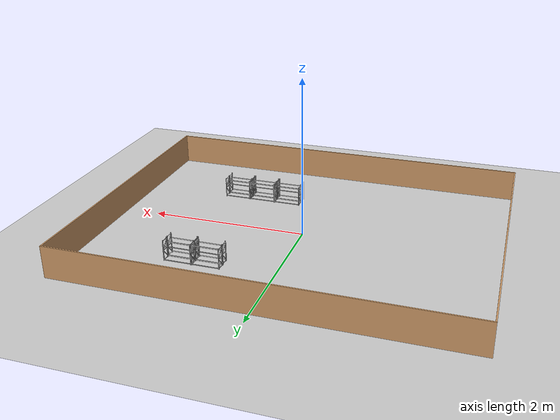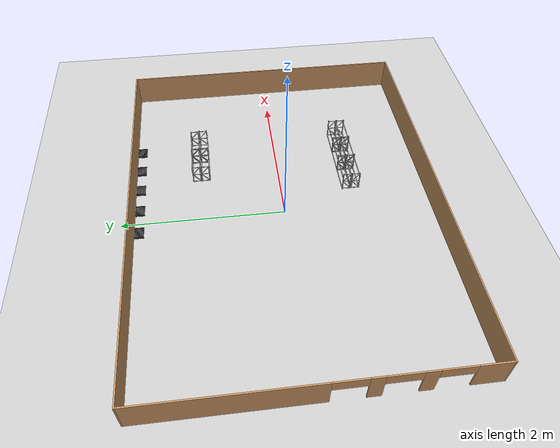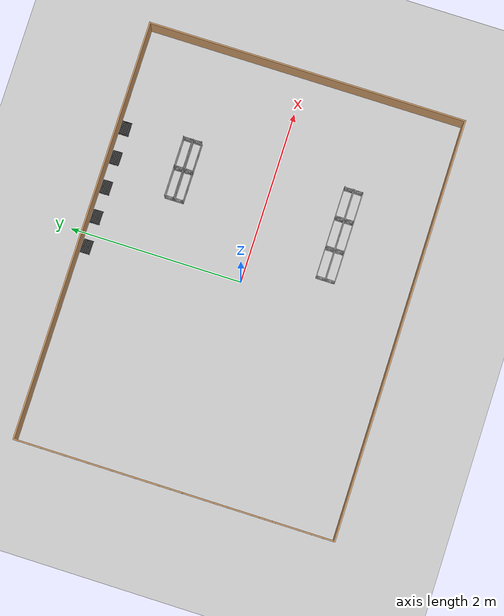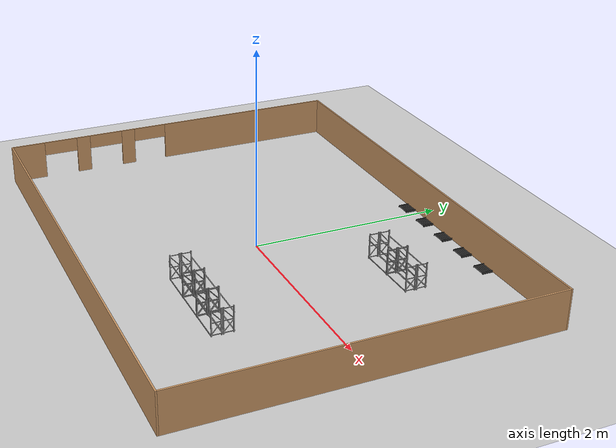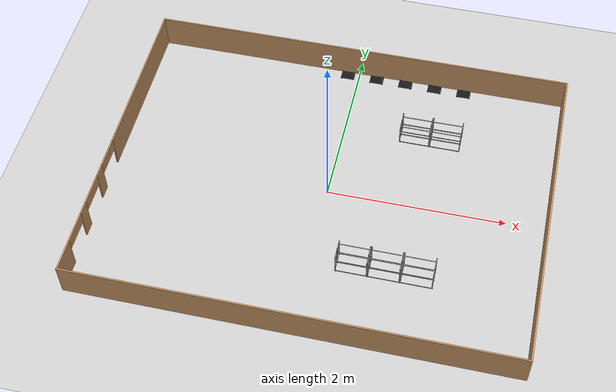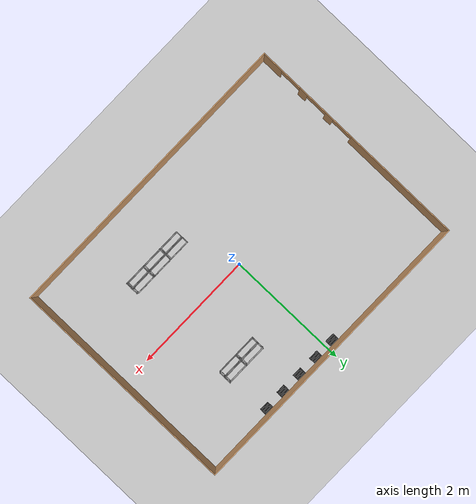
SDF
<?xml version="1.0" ?>
<sdf version="1.8">
  <world name="factory_world">

     <!-- FAST PHYSICS CONFIGURATION -->
    <physics name="fast_physics" type="ignored">
      <max_step_size>0.005</max_step_size>
      <real_time_factor>1.0</real_time_factor>
      <real_time_update_rate>200</real_time_update_rate>
    </physics>

    <!-- ESSENTIAL PLUGINS -->
    <plugin filename="libignition-gazebo-physics-system.so" name="ignition::gazebo::systems::Physics"/>
    <plugin filename="libignition-gazebo-user-commands-system.so" name="ignition::gazebo::systems::UserCommands"/>
    <plugin filename="libignition-gazebo-scene-broadcaster-system.so" name="ignition::gazebo::systems::SceneBroadcaster"/>
    <plugin filename="libignition-gazebo-contact-system.so" name="ignition::gazebo::systems::Contact"/>

    <!-- OPTIMIZED SCENE & LIGHTING -->
    <scene>
      <shadows>false</shadows>
      <grid>false</grid>
    </scene>

    <light type="directional" name="sun">
      <cast_shadows>false</cast_shadows>
      <pose>0 0 10 0 0 0</pose>
      <diffuse>1 1 1 1</diffuse>
      <specular>0.5 0.5 0.5 1</specular>
    </light>

    <!-- GROUND PLANE -->
    <model name="ground_plane">
      <static>true</static>
      <link name="link">
        <collision name="collision">
          <geometry><plane><normal>0 0 1</normal><size>100 100</size></plane></geometry>
        </collision>
        <visual name="visual">
          <geometry><plane><normal>0 0 1</normal><size>100 100</size></plane></geometry>
          <material>
            <ambient>0.8 0.8 0.8 1</ambient>
            <diffuse>0.8 0.8 0.8 1</diffuse>
          </material>
        </visual>
      </link>
    </model>

    <!-- FACTORY WALLS -->
    <model name="factory_walls">
      <static>true</static>

      <link name="north_wall">
        <pose>0 1.841 0.201 0 0 0</pose>
        <collision name="north_col">
          <geometry><box><size>4.884 0.016 0.402</size></box></geometry>
        </collision>
        <visual name="north_vis">
          <geometry><box><size>4.884 0.016 0.402</size></box></geometry>
          <material>
            <ambient>0.8 0.6 0.4 1</ambient>
            <diffuse>0.8 0.6 0.4 1</diffuse>
          </material>
        </visual>
      </link>

      <link name="south_wall">
        <pose>0 -1.841 0.201 0 0 0</pose>
        <collision name="south_col">
          <geometry><box><size>4.884 0.016 0.402</size></box></geometry>
        </collision>
        <visual name="south_vis">
          <geometry><box><size>4.884 0.016 0.402</size></box></geometry>
          <material><ambient>0.8 0.6 0.4 1</ambient><diffuse>0.8 0.6 0.4 1</diffuse></material>
        </visual>
      </link>

      <link name="east_wall">
        <pose>2.434 0 0.201 0 0 0</pose>
        <collision name="east_col">
          <geometry><box><size>0.016 3.666 0.402</size></box></geometry>
        </collision>
        <visual name="east_vis">
          <geometry><box><size>0.016 3.666 0.402</size></box></geometry>
          <material><ambient>0.8 0.6 0.4 1</ambient><diffuse>0.8 0.6 0.4 1</diffuse></material>
        </visual>
      </link>

      <link name="west_wall_seg1">
        <pose>-2.434 -1.6605 0.201 0 0 0</pose>
        <collision name="ww1_col"><geometry><box><size>0.016 0.345 0.402</size></box></geometry></collision>
        <visual name="ww1_vis"><geometry><box><size>0.016 0.345 0.402</size></box></geometry>
        <material><ambient>0.8 0.6 0.4 1</ambient><diffuse>0.8 0.6 0.4 1</diffuse></material></visual>
      </link>

      <link name="west_door1_header">
        <pose>-2.434 -1.308 0.329 0 0 0</pose>
        <collision name="wd1_col"><geometry><box><size>0.016 0.360 0.146</size></box></geometry></collision>
        <visual name="wd1_vis"><geometry><box><size>0.016 0.360 0.146</size></box></geometry>
        <material><ambient>0.8 0.6 0.4 1</ambient><diffuse>0.8 0.6 0.4 1</diffuse></material></visual>
      </link>

      <link name="west_wall_seg2">
        <pose>-2.434 -1.053 0.201 0 0 0</pose>
        <collision name="ww2_col"><geometry><box><size>0.016 0.150 0.402</size></box></geometry></collision>
        <visual name="ww2_vis"><geometry><box><size>0.016 0.150 0.402</size></box></geometry>
        <material><ambient>0.8 0.6 0.4 1</ambient><diffuse>0.8 0.6 0.4 1</diffuse></material></visual>
      </link>

      <link name="west_door2_header">
        <pose>-2.434 -0.795 0.329 0 0 0</pose>
        <collision name="wd2_col"><geometry><box><size>0.016 0.366 0.146</size></box></geometry></collision>
        <visual name="wd2_vis"><geometry><box><size>0.016 0.366 0.146</size></box></geometry>
        <material><ambient>0.8 0.6 0.4 1</ambient><diffuse>0.8 0.6 0.4 1</diffuse></material></visual>
      </link>

      <link name="west_wall_seg3">
        <pose>-2.434 -0.537 0.201 0 0 0</pose>
        <collision name="ww3_col"><geometry><box><size>0.016 0.150 0.402</size></box></geometry></collision>
        <visual name="ww3_vis"><geometry><box><size>0.016 0.150 0.402</size></box></geometry>
        <material><ambient>0.8 0.6 0.4 1</ambient><diffuse>0.8 0.6 0.4 1</diffuse></material></visual>
      </link>

      <link name="west_door3_header">
        <pose>-2.434 -0.282 0.329 0 0 0</pose>
        <collision name="wd3_col"><geometry><box><size>0.016 0.360 0.146</size></box></geometry></collision>
        <visual name="wd3_vis"><geometry><box><size>0.016 0.360 0.146</size></box></geometry>
        <material><ambient>0.8 0.6 0.4 1</ambient><diffuse>0.8 0.6 0.4 1</diffuse></material></visual>
      </link>

      <link name="west_wall_seg4">
        <pose>-2.434 0.8655 0.201 0 0 0</pose>
        <collision name="ww4_col"><geometry><box><size>0.016 1.935 0.402</size></box></geometry></collision>
        <visual name="ww4_vis"><geometry><box><size>0.016 1.935 0.402</size></box></geometry>
        <material><ambient>0.8 0.6 0.4 1</ambient><diffuse>0.8 0.6 0.4 1</diffuse></material></visual>
      </link>

    </model>

    <!-- STORAGE RACKS -->
    <model name="storage_rack_1">
      <static>true</static>
      <pose>1.0 1.0 0.0 0 0 0</pose>
      <link name="rack_link">
        <collision name="rack_collision">
          <geometry><mesh><uri>model://puzzlebot_description/models/rack.stl</uri></mesh></geometry>
        </collision>
        <visual name="rack_visual">
          <geometry><mesh><uri>model://puzzlebot_description/models/rack.stl</uri></mesh></geometry>
          <material><ambient>0.6 0.6 0.6 1</ambient><diffuse>0.6 0.6 0.6 1</diffuse></material>
        </visual>
      </link>
    </model>

    <model name="storage_rack_2">
      <static>true</static>
      <pose>1.0 0.887 0.0 0 0 0</pose>
      <link name="rack_link">
        <collision name="rack_collision">
          <geometry><mesh><uri>model://puzzlebot_description/models/rack.stl</uri></mesh></geometry>
        </collision>
        <visual name="rack_visual">
          <geometry><mesh><uri>model://puzzlebot_description/models/rack.stl</uri></mesh></geometry>
          <material><ambient>0.6 0.6 0.6 1</ambient><diffuse>0.6 0.6 0.6 1</diffuse></material>
        </visual>
      </link>
    </model>

    <model name="storage_rack_3">
      <static>true</static>
      <pose>0.648 1.0 0.0 0 0 0</pose>
      <link name="rack_link">
        <collision name="rack_collision">
          <geometry><mesh><uri>model://puzzlebot_description/models/rack.stl</uri></mesh></geometry>
        </collision>
        <visual name="rack_visual">
          <geometry><mesh><uri>model://puzzlebot_description/models/rack.stl</uri></mesh></geometry>
          <material><ambient>0.6 0.6 0.6 1</ambient><diffuse>0.6 0.6 0.6 1</diffuse></material>
        </visual>
      </link>
    </model>

    <model name="storage_rack_4">
      <static>true</static>
      <pose>0.648 0.887 0.0 0 0 0</pose>
      <link name="rack_link">
        <collision name="rack_collision">
          <geometry><mesh><uri>model://puzzlebot_description/models/rack.stl</uri></mesh></geometry>
        </collision>
        <visual name="rack_visual">
          <geometry><mesh><uri>model://puzzlebot_description/models/rack.stl</uri></mesh></geometry>
          <material><ambient>0.6 0.6 0.6 1</ambient><diffuse>0.6 0.6 0.6 1</diffuse></material>
        </visual>
      </link>
    </model>

    <model name="storage_rack_5">
      <static>true</static>
      <pose>1.0 -1.0 0.0 0 0 0</pose>
      <link name="rack_link">
        <collision name="rack_collision"><geometry><mesh><uri>model://puzzlebot_description/models/rack.stl</uri></mesh></geometry></collision>
        <visual name="rack_visual">
          <geometry><mesh><uri>model://puzzlebot_description/models/rack.stl</uri></mesh></geometry>
          <material><ambient>0.6 0.6 0.6 1</ambient><diffuse>0.6 0.6 0.6 1</diffuse></material>
        </visual>
      </link>
    </model>

    <model name="storage_rack_6">
      <static>true</static>
      <pose>1.0 -0.887 0.0 0 0 0</pose>
      <link name="rack_link">
        <collision name="rack_collision"><geometry><mesh><uri>model://puzzlebot_description/models/rack.stl</uri></mesh></geometry></collision>
        <visual name="rack_visual">
          <geometry><mesh><uri>model://puzzlebot_description/models/rack.stl</uri></mesh></geometry>
          <material><ambient>0.6 0.6 0.6 1</ambient><diffuse>0.6 0.6 0.6 1</diffuse></material>
        </visual>
      </link>
    </model>

    <model name="storage_rack_7">
      <static>true</static>
      <pose>0.648 -1.0 0.0 0 0 0</pose>
      <link name="rack_link">
        <collision name="rack_collision"><geometry><mesh><uri>model://puzzlebot_description/models/rack.stl</uri></mesh></geometry></collision>
        <visual name="rack_visual">
          <geometry><mesh><uri>model://puzzlebot_description/models/rack.stl</uri></mesh></geometry>
          <material><ambient>0.6 0.6 0.6 1</ambient><diffuse>0.6 0.6 0.6 1</diffuse></material>
        </visual>
      </link>
    </model>

    <model name="storage_rack_8">
      <static>true</static>
      <pose>0.648 -0.887 0.0 0 0 0</pose>
      <link name="rack_link">
        <collision name="rack_collision"><geometry><mesh><uri>model://puzzlebot_description/models/rack.stl</uri></mesh></geometry></collision>
        <visual name="rack_visual">
          <geometry><mesh><uri>model://puzzlebot_description/models/rack.stl</uri></mesh></geometry>
          <material><ambient>0.6 0.6 0.6 1</ambient><diffuse>0.6 0.6 0.6 1</diffuse></material>
        </visual>
      </link>
    </model>

    <model name="storage_rack_9">
      <static>true</static>
      <pose>0.296 -1.0 0.0 0 0 0</pose>
      <link name="rack_link">
        <collision name="rack_collision"><geometry><mesh><uri>model://puzzlebot_description/models/rack.stl</uri></mesh></geometry></collision>
        <visual name="rack_visual">
          <geometry><mesh><uri>model://puzzlebot_description/models/rack.stl</uri></mesh></geometry>
          <material><ambient>0.6 0.6 0.6 1</ambient><diffuse>0.6 0.6 0.6 1</diffuse></material>
        </visual>
      </link>
    </model>

    <model name="storage_rack_10">
      <static>true</static>
      <pose>0.296 -0.887 0.0 0 0 0</pose>
      <link name="rack_link">
        <collision name="rack_collision"><geometry><mesh><uri>model://puzzlebot_description/models/rack.stl</uri></mesh></geometry></collision>
        <visual name="rack_visual">
          <geometry><mesh><uri>model://puzzlebot_description/models/rack.stl</uri></mesh></geometry>
          <material><ambient>0.6 0.6 0.6 1</ambient><diffuse>0.6 0.6 0.6 1</diffuse></material>
        </visual>
      </link>
    </model>

    <!-- CONVEYORS -->
    <model name="conveyor_1">
      <static>true</static>
      <pose>1.350 1.83 0.0 0 0 0</pose>
      <link name="conveyor_link">
        <collision name="conveyor_collision"><geometry><mesh><uri>model://puzzlebot_description/models/conveyor.stl</uri></mesh></geometry></collision>
        <visual name="conveyor_visual">
          <geometry><mesh><uri>model://puzzlebot_description/models/conveyor.stl</uri></mesh></geometry>
          <material><ambient>0.2 0.2 0.2 1</ambient><diffuse>0.2 0.2 0.2 1</diffuse></material>
        </visual>
      </link>
    </model>

    <model name="conveyor_2">
      <static>true</static>
      <pose>0.998 1.83 0.0 0 0 0</pose>
      <link name="conveyor_link">
        <collision name="conveyor_collision"><geometry><mesh><uri>model://puzzlebot_description/models/conveyor.stl</uri></mesh></geometry></collision>
        <visual name="conveyor_visual">
          <geometry><mesh><uri>model://puzzlebot_description/models/conveyor.stl</uri></mesh></geometry>
          <material><ambient>0.2 0.2 0.2 1</ambient><diffuse>0.2 0.2 0.2 1</diffuse></material>
        </visual>
      </link>
    </model>

    <model name="conveyor_3">
      <static>true</static>
      <pose>0.646 1.83 0.0 0 0 0</pose>
      <link name="conveyor_link">
        <collision name="conveyor_collision"><geometry><mesh><uri>model://puzzlebot_description/models/conveyor.stl</uri></mesh></geometry></collision>
        <visual name="conveyor_visual">
          <geometry><mesh><uri>model://puzzlebot_description/models/conveyor.stl</uri></mesh></geometry>
          <material><ambient>0.2 0.2 0.2 1</ambient><diffuse>0.2 0.2 0.2 1</diffuse></material>
        </visual>
      </link>
    </model>

    <model name="conveyor_4">
      <static>true</static>
      <pose>0.294 1.83 0.0 0 0 0</pose>
      <link name="conveyor_link">
        <collision name="conveyor_collision"><geometry><mesh><uri>model://puzzlebot_description/models/conveyor.stl</uri></mesh></geometry></collision>
        <visual name="conveyor_visual">
          <geometry><mesh><uri>model://puzzlebot_description/models/conveyor.stl</uri></mesh></geometry>
          <material><ambient>0.2 0.2 0.2 1</ambient><diffuse>0.2 0.2 0.2 1</diffuse></material>
        </visual>
      </link>
    </model>

    <model name="conveyor_5">
      <static>true</static>
      <pose>-0.058 1.83 0.0 0 0 0</pose>
      <link name="conveyor_link">
        <collision name="conveyor_collision"><geometry><mesh><uri>model://puzzlebot_description/models/conveyor.stl</uri></mesh></geometry></collision>
        <visual name="conveyor_visual">
          <geometry><mesh><uri>model://puzzlebot_description/models/conveyor.stl</uri></mesh></geometry>
          <material><ambient>0.2 0.2 0.2 1</ambient><diffuse>0.2 0.2 0.2 1</diffuse></material>
        </visual>
      </link>
    </model>

  </world>
</sdf>
